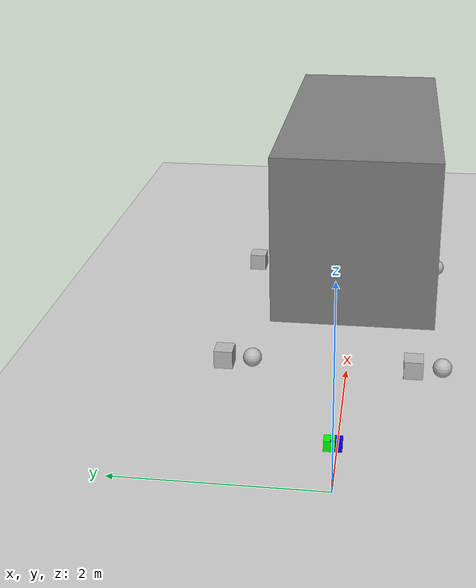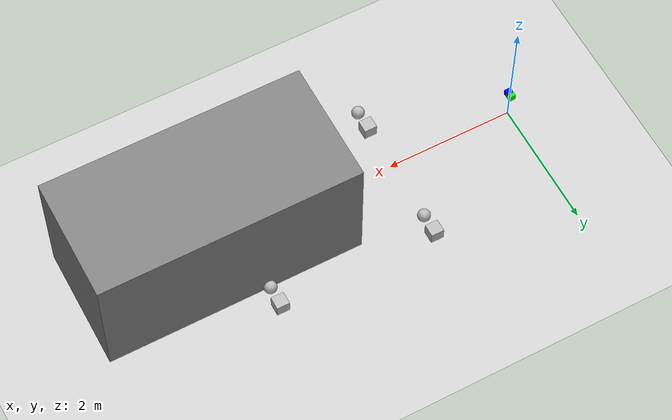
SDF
<?xml version="1.0"?>
<sdf version="1.6">
  <world name="duo_minilx_lv1_world">
    <include>
      <uri>model://sun</uri>
    </include>
    <include>
      <uri>model://ground_plane</uri>
    </include>
    <model name="duo_stereo_camera">
      <static>true</static>
      <pose>0 0 0 0 0 0</pose>
      <link name="left_camera_link">
        <pose>0 0.03 0.5 0 0 0</pose>
        <visual name="left_visual">
          <geometry>
            <box><size>0.1 0.1 0.1</size></box>
          </geometry>
          <material><ambient>0 1 0 1</ambient></material>
        </visual>
        <sensor name="left_camera_sensor" type="depth">
          <alwaysOn>1</alwaysOn>
          <updateRate>45</updateRate>
          <camera name="left_camera">
            <horizontal_fov>1.047</horizontal_fov>
            <image>
              <width>640</width>
              <height>480</height>
              <format>R8G8B8</format>
            </image>
            <clip>
              <near>0.05</near>
              <far>10.0</far>
            </clip>
            <noise>
              <type>gaussian</type>
              <mean>0.0</mean>
              <stddev>0.005</stddev>
            </noise>
          </camera>
          <plugin name="left_camera_plugin" filename="libgazebo_ros_depth_camera.so">
            <alwaysOn>1</alwaysOn>
            <updateRate>45</updateRate>
            <cameraName>left_camera</cameraName>
            <imageTopicName>image_raw</imageTopicName>
            <depthImageTopicName>depth/image_raw</depthImageTopicName>
            <pointCloudTopicName>points</pointCloudTopicName>
            <frameName>left_camera_link</frameName>
            <ros>
              <namespace>/duo_minilx_lv1/left</namespace>
            </ros>
          </plugin>
        </sensor>
      </link>
      <link name="right_camera_link">
        <pose>0 -0.03 0.5 0 0 0</pose>
        <visual name="right_visual">
          <geometry>
            <box><size>0.1 0.1 0.1</size></box>
          </geometry>
          <material><ambient>0 0 1 1</ambient></material>
        </visual>
        <sensor name="right_camera_sensor" type="depth">
          <alwaysOn>1</alwaysOn>
          <updateRate>45</updateRate>
          <camera name="right_camera">
            <horizontal_fov>1.047</horizontal_fov>
            <image>
              <width>640</width>
              <height>480</height>
              <format>R8G8B8</format>
            </image>
            <clip>
              <near>0.05</near>
              <far>10.0</far>
            </clip>
            <noise>
              <type>gaussian</type>
              <mean>0.0</mean>
              <stddev>0.005</stddev>
            </noise>
          </camera>
          <plugin name="right_camera_plugin" filename="libgazebo_ros_depth_camera.so">
            <alwaysOn>1</alwaysOn>
            <updateRate>45</updateRate>
            <cameraName>right_camera</cameraName>
            <imageTopicName>image_raw</imageTopicName>
            <depthImageTopicName>depth/image_raw</depthImageTopicName>
            <pointCloudTopicName>points</pointCloudTopicName>
            <frameName>right_camera_link</frameName>
            <ros>
              <namespace>/duo_minilx_lv1/right</namespace>
            </ros>
          </plugin>
        </sensor>
      </link>
    </model>
    <model name="wall">
      <static>true</static>
      <pose>5 0 1 0 0 0</pose>
      <link name="wall_link">
        <visual name="left_wall">
          <geometry><box><size>4 1.9 2</size></box></geometry>
          <material><ambient>0.5 0.5 0.5 1</ambient></material>
        </visual>
        <visual name="right_wall">
          <geometry><box><size>4 1.9 2</size></box></geometry>
          <material>
            <script>
              <uri>file://media/materials/scripts/gazebo.material</uri>
              <name>Gazebo/CheckerBoard</name>
            </script>
          </material>
        </visual>
      </link>
    </model>
    <model name="test_sphere_2m_left_front">
      <pose>2 -1 0.1 0 0 0</pose>
      <static>true</static>
      <link name="link">
        <visual name="visual"><geometry><sphere><radius>0.1</radius></sphere></geometry></visual>
        <collision name="collision"><geometry><sphere><radius>0.1</radius></sphere></geometry></collision>
      </link>
    </model>
    <model name="test_box_2m_left_near">
      <pose>2 -0.7 0.1 0 0 0</pose>
      <static>true</static>
      <link name="link">
        <visual name="visual"><geometry><box><size>0.2 0.2 0.2</size></box></geometry></visual>
        <collision name="collision"><geometry><box><size>0.2 0.2 0.2</size></box></geometry></collision>
      </link>
    </model>
    <model name="test_sphere_4_5m_left_front">
      <pose>4.5 -1 0.1 0 0 0</pose>
      <static>true</static>
      <link name="link">
        <visual name="visual"><geometry><sphere><radius>0.1</radius></sphere></geometry></visual>
        <collision name="collision"><geometry><sphere><radius>0.1</radius></sphere></geometry></collision>
      </link>
    </model>
    <model name="test_box_4_5m_left_near">
      <pose>4.5 -0.7 0.1 0 0 0</pose>
      <static>true</static>
      <link name="link">
        <visual name="visual"><geometry><box><size>0.2 0.2 0.2</size></box></geometry></visual>
        <collision name="collision"><geometry><box><size>0.2 0.2 0.2</size></box></geometry></collision>
      </link>
    </model>
    <model name="test_sphere_2m_right_front">
      <pose>2 1 0.1 0 0 0</pose>
      <static>true</static>
      <link name="link">
        <visual name="visual"><geometry><sphere><radius>0.1</radius></sphere></geometry></visual>
        <collision name="collision"><geometry><sphere><radius>0.1</radius></sphere></geometry></collision>
      </link>
    </model>
    <model name="test_box_2m_right_near">
      <pose>2 1.3 0.1 0 0 0</pose>
      <static>true</static>
      <link name="link">
        <visual name="visual"><geometry><box><size>0.2 0.2 0.2</size></box></geometry></visual>
        <collision name="collision"><geometry><box><size>0.2 0.2 0.2</size></box></geometry></collision>
      </link>
    </model>
    <model name="test_sphere_4_5m_right_front">
      <pose>4.5 1 0.1 0 0 0</pose>
      <static>true</static>
      <link name="link">
        <visual name="visual"><geometry><sphere><radius>0.1</radius></sphere></geometry></visual>
        <collision name="collision"><geometry><sphere><radius>0.1</radius></sphere></geometry></collision>
      </link>
    </model>
    <model name="test_box_4_5m_right_near">
      <pose>4.5 1.3 0.1 0 0 0</pose>
      <static>true</static>
      <link name="link">
        <visual name="visual"><geometry><box><size>0.2 0.2 0.2</size></box></geometry></visual>
        <collision name="collision"><geometry><box><size>0.2 0.2 0.2</size></box></geometry></collision>
      </link>
    </model>
  </world>
</sdf>
